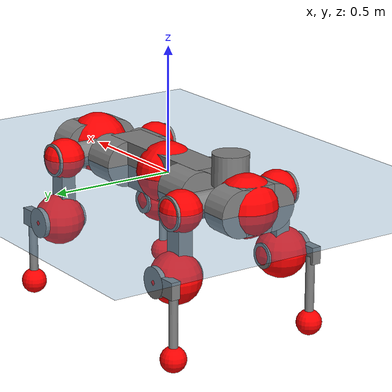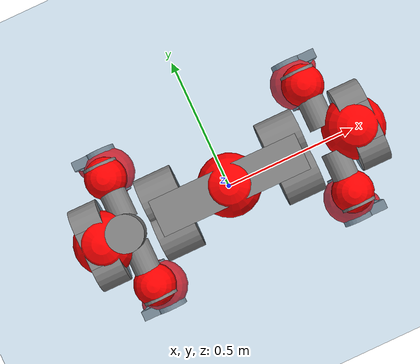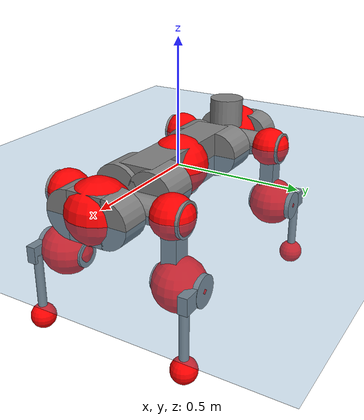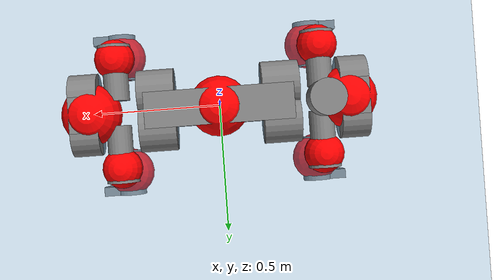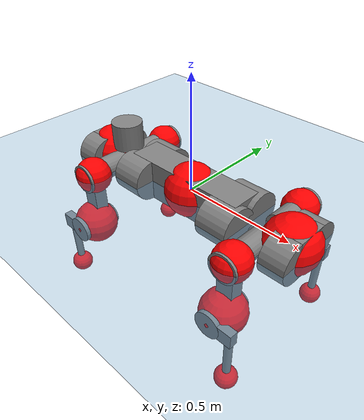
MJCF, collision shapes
<mujoco model="anymal_c">
  <compiler angle="radian" assetdir="assets" balanceinertia="true" inertiafromgeom="false"/>

  <option timestep="0.005" density="1.2" viscosity="2e-05"/>

  <size nkey="1"/>

  <visual>
    <quality shadowsize="8192"/>
    <map shadowclip="0.5"/>
  </visual>

  <default>
    <default class="/">
      <material specular="0" shininess="0.25"/>
      <geom contype="0" conaffinity="0" group="1" solref="-1000 -80"/>
      <site size="0.01 0.005 0.005" group="5"/>
      <general forcelimited="true" forcerange="-80 80" biastype="affine" gainprm="80" biasprm="0 -80 -2"/>
      <default class="anymal_c">
        <joint armature="0.01" damping="0.01" frictionloss="0.1"/>
        <default class="visual">
          <geom type="mesh" group="2"/>
          <default class="visual_zflip"/>
        </default>
        <default class="collision">
          <geom type="cylinder" group="3"/>
          <default class="foot">
            <geom size="0.03 0 0" type="sphere" condim="6" priority="1" friction="0.8 0.02 0.01" solimp="0.015 1 0.03"/>
          </default>
        </default>
      </default>
      <default class="reward_collision_sphere">
        <geom group="5" rgba="1 0 0 1"/>
      </default>
    </default>
  </default>

  <asset>
    <texture type="skybox" colorspace="auto" name="//unnamed_texture_0" builtin="gradient" rgb1="0.95 0.95 0.95" rgb2="0.95 0.95 0.95" width="100" height="600"/>
    <texture type="2d" colorspace="auto" name="texplane" builtin="checker" rgb1="0.345 0.575 0.748" rgb2="0.345 0.575 0.748" markrgb="1 1 1" width="512" height="512"/>
    <texture type="2d" colorspace="linear" name="base" file="base.png"/>
    <texture type="2d" colorspace="linear" name="top_shell" file="top_shell.png"/>
    <texture type="2d" colorspace="linear" name="bottom_shell" file="bottom_shell.png"/>
    <texture type="2d" colorspace="linear" name="remote" file="remote.png"/>
    <texture type="2d" colorspace="linear" name="hatch" file="hatch.png"/>
    <texture type="2d" colorspace="linear" name="handle" file="handle.png"/>
    <texture type="2d" colorspace="linear" name="face" file="face.png"/>
    <texture type="2d" colorspace="linear" name="battery" file="battery.png"/>
    <texture type="2d" colorspace="linear" name="lidar_cage" file="lidar_cage.png"/>
    <texture type="2d" colorspace="linear" name="depth_camera" file="depth_camera.png"/>
    <texture type="2d" colorspace="linear" name="wide_angle_camera" file="wide_angle_camera.png"/>
    <texture type="2d" colorspace="linear" name="lidar" file="lidar.png"/>
    <texture type="2d" colorspace="linear" name="drive" file="drive.png"/>
    <texture type="2d" colorspace="linear" name="hip_l" file="hip_l.png"/>
    <texture type="2d" colorspace="linear" name="shank_l" file="shank_l.png"/>
    <texture type="2d" colorspace="linear" name="foot" file="foot.png"/>
    <texture type="2d" colorspace="linear" name="thigh" file="thigh.png"/>
    <texture type="2d" colorspace="linear" name="shank_r" file="shank_r.png"/>
    <texture type="2d" colorspace="linear" name="hip_r" file="hip_r.png"/>
    <material name="MatPlane" class="/" texture="texplane" texuniform="true" texrepeat="2 2" specular="0.9" shininess="0.5"/>
    <material name="black_plastic" class="/" rgba="0.007 0.007 0.007 1"/>
    <material name="green" class="/" rgba="0.052 0.178 0.033 1"/>
    <material name="red" class="/" rgba="0.178 0.006 0.005 1"/>
    <material name="yellow" class="/" rgba="0.178 0.119 0.006 1"/>
    <material name="lwl" class="/" rgba="0.8 0.8 0.8 1"/>
    <material name="base" class="/" texture="base"/>
    <material name="top_shell" class="/" texture="top_shell"/>
    <material name="bottom_shell" class="/" texture="bottom_shell"/>
    <material name="hip_l" class="/" texture="hip_l"/>
    <material name="thigh" class="/" texture="thigh"/>
    <material name="shank_l" class="/" texture="shank_l"/>
    <material name="foot" class="/" texture="foot"/>
    <material name="hip_r" class="/" texture="hip_r"/>
    <material name="shank" class="/" texture="shank_r"/>
    <material name="hatch" class="/" texture="hatch"/>
    <material name="remote" class="/" texture="remote"/>
    <material name="handle" class="/" texture="handle"/>
    <material name="face" class="/" texture="face"/>
    <material name="depth_camera" class="/" texture="depth_camera"/>
    <material name="wide_angle_camera" class="/" texture="wide_angle_camera"/>
    <material name="battery" class="/" texture="battery"/>
    <material name="lidar_cage" class="/" texture="lidar_cage"/>
    <material name="lidar" class="/" texture="lidar"/>
    <material name="drive" class="/" texture="drive"/>
    <mesh name="base_0" class="/" file="base_0.obj"/>
    <mesh name="base_1" class="/" file="base_1.obj"/>
    <mesh name="base_2" class="/" file="base_2.obj"/>
    <mesh name="base_3" class="/" file="base_3.obj"/>
    <mesh name="base_4" class="/" file="base_4.obj"/>
    <mesh name="base_5" class="/" file="base_5.obj"/>
    <mesh name="top_shell" class="/" file="top_shell.obj"/>
    <mesh name="bottom_shell" class="/" file="bottom_shell.obj"/>
    <mesh name="remote" class="/" file="remote.obj"/>
    <mesh name="handle" class="/" file="handle.obj"/>
    <mesh name="face" class="/" file="face.obj"/>
    <mesh name="wide_angle_camera" class="/" file="wide_angle_camera.obj"/>
    <mesh name="depth_camera" class="/" file="depth_camera.obj"/>
    <mesh name="battery" class="/" file="battery.obj"/>
    <mesh name="lidar_cage" class="/" file="lidar_cage.obj"/>
    <mesh name="lidar" class="/" file="lidar.obj"/>
    <mesh name="drive" class="/" file="drive.obj"/>
    <mesh name="hip_l" class="/" file="hip_l.obj"/>
    <mesh name="thigh" class="/" file="thigh.obj"/>
    <mesh name="shank_l" class="/" file="shank_l.obj"/>
    <mesh name="foot" class="/" file="foot.obj"/>
    <mesh name="hip_r" class="/" file="hip_r.obj"/>
    <mesh name="hatch" class="/" file="hatch.obj"/>
    <mesh name="shank_r" class="/" file="shank_r.obj"/>
  </asset>

  <worldbody>
    <geom name="floor" class="/" size="100 100 0.125" type="plane" group="0" material="MatPlane"/>
    <light name="toplight_shadow" class="/" pos="0 0 5" dir="0.0990148 0.0990148 -0.990148" type="directional" ambient="0.04 0.04 0.04" diffuse="0.55 0.55 0.55" specular="0.12 0.12 0.12"/>
    <light name="toplight_fill" class="/" pos="0 0 5" dir="0.0990148 0.0990148 -0.990148" type="directional" castshadow="false" ambient="0.04 0.04 0.04" diffuse="0.3 0.3 0.3" specular="0.08 0.08 0.08"/>
    <body name="trunk" childclass="anymal_c" pos="0.00243949 0.00139478 0.0008201" quat="1 -6.25367e-05 2.67245e-05 1.76731e-05">
      <inertial pos="0.00254246 0.00121712 0.0416312" quat="0.508097 0.49193 0.501765 0.498071" mass="19.9497" diaginertia="1.23901 0.770822 0.108806"/>
      <joint name="//unnamed_joint_0" type="free" armature="0" damping="0" frictionloss="0"/>
      <geom name="//unnamed_geom_1" class="visual" material="green" mesh="base_0"/>
      <geom name="//unnamed_geom_2" class="visual" material="yellow" mesh="base_1"/>
      <geom name="//unnamed_geom_3" class="visual" material="red" mesh="base_2"/>
      <geom name="//unnamed_geom_4" class="visual" material="black_plastic" mesh="base_3"/>
      <geom name="//unnamed_geom_5" class="visual" material="lwl" mesh="base_4"/>
      <geom name="//unnamed_geom_6" class="visual" material="base" mesh="base_5"/>
      <geom name="trunk_1" class="collision" size="0.292844 0.0706865 0.0908826" type="box"/>
      <geom name="trunk_2" class="collision" size="0.0908826 0.073211" pos="0.24515 0.0721534 0" quat="0.707107 0 0.707107 0"/>
      <geom name="trunk_3" class="collision" size="0.0908826 0.073211" pos="-0.24515 0.0721534 0" quat="0.707107 0 0.707107 0"/>
      <geom name="trunk_4" class="collision" size="0.0908826 0.073211" pos="0.24515 -0.0721534 0" quat="0.707107 0 0.707107 0"/>
      <geom name="trunk_5" class="collision" size="0.0908826 0.073211" pos="-0.24515 -0.0721534 0" quat="0.707107 0 0.707107 0"/>
      <geom name="//unnamed_geom_12" class="visual" material="top_shell" mesh="top_shell"/>
      <geom name="//unnamed_geom_13" class="visual" material="bottom_shell" mesh="bottom_shell"/>
      <geom name="//unnamed_geom_14" class="visual" material="remote" mesh="remote"/>
      <geom name="//unnamed_geom_15" class="visual" material="handle" mesh="handle"/>
      <geom name="//unnamed_geom_16" class="visual" pos="0.467195 0 0" quat="1 0 0 0" material="face" mesh="face"/>
      <geom name="trunk_6" class="collision" size="0.0555394 0.0706865 0.0908826" pos="0.529187 0 0" type="box"/>
      <geom name="//unnamed_geom_18" class="collision" size="0.0908826 0.0555394" pos="0.529187 0.0721534 0" quat="0.707107 0 0.707107 0"/>
      <geom name="//unnamed_geom_19" class="collision" size="0.0908826 0.0555394" pos="0.529187 -0.0721534 0" quat="0.707107 0 0.707107 0"/>
      <geom name="//unnamed_geom_20" class="visual" pos="0.520328 0 -0.0235061" quat="0.965926 0 0.258819 0" material="depth_camera" mesh="depth_camera"/>
      <geom name="//unnamed_geom_21" class="visual" pos="0.578217 0 0.0130468" material="wide_angle_camera" mesh="wide_angle_camera"/>
      <geom name="//unnamed_geom_22" class="visual_zflip" pos="-0.467195 0 0" quat="0 0 0 1" material="face" mesh="face"/>
      <geom name="trunk_7" class="collision" size="0.0555394 0.0706865 0.0908826" pos="-0.529187 0 0" quat="0 0 0 1" type="box"/>
      <geom name="//unnamed_geom_24" class="collision" size="0.0908826 0.0555394" pos="-0.529187 -0.0721534 0" quat="0 -0.707107 0 0.707107"/>
      <geom name="//unnamed_geom_25" class="collision" size="0.0908826 0.0555394" pos="-0.529187 0.0721534 0" quat="0 -0.707107 0 0.707107"/>
      <geom name="//unnamed_geom_26" class="visual" pos="-0.520328 0 -0.0235061" quat="0 -0.258819 0 0.965926" material="depth_camera" mesh="depth_camera"/>
      <geom name="//unnamed_geom_27" class="visual_zflip" pos="-0.578217 0 0.0130468" quat="0 0 0 1" material="wide_angle_camera" mesh="wide_angle_camera"/>
      <geom name="//unnamed_geom_28" class="visual" material="battery" mesh="battery"/>
      <geom name="//unnamed_geom_29" class="visual" pos="0 0.0775371 0.0272605" quat="0.683013 -0.183013 0.183013 0.683013" material="depth_camera" mesh="depth_camera"/>
      <geom name="//unnamed_geom_30" class="visual" pos="0 -0.0775371 0.0272605" quat="0.683013 0.183013 0.183013 -0.683013" material="depth_camera" mesh="depth_camera"/>
      <geom name="//unnamed_geom_31" class="visual" pos="-0.410275 0 0.0640573" quat="1 0 0 0" material="lidar_cage" mesh="lidar_cage"/>
      <geom name="trunk_8" class="collision" size="0.0706865 0.0605884" pos="-0.410275 0 0.116349"/>
      <geom name="//unnamed_geom_33" class="visual" pos="-0.410275 -3.78591e-05 0.123931" quat="0.707107 0 0 -0.707107" material="lidar" mesh="lidar"/>
      <geom name="//unnamed_geom_34" class="visual" pos="0.338026 0.107143 2.74682e-09" quat="0.258819 0.965926 0 0" material="drive" mesh="drive"/>
      <geom name="//unnamed_geom_35" class="visual" pos="0.338026 -0.107143 -2.74682e-09" quat="0.258819 -0.965926 0 0" material="drive" mesh="drive"/>
      <geom name="//unnamed_geom_36" class="visual" pos="-0.338026 0.107143 -2.74682e-09" quat="0 0 0.965926 -0.258819" material="drive" mesh="drive"/>
      <geom name="//unnamed_geom_37" class="visual" pos="-0.338026 -0.107143 2.74682e-09" quat="0 0 -0.965926 -0.258819" material="drive" mesh="drive"/>
      <geom name="//unnamed_geom_38" class="visual" pos="0.130747 0 0.0636216" quat="1 0 0 0" material="hatch" mesh="hatch"/>
      <geom name="//unnamed_geom_39" class="reward_collision_sphere" size="0.121177"/>
      <geom name="//unnamed_geom_40" class="reward_collision_sphere" size="0.121177" pos="0.507208 0 0"/>
      <geom name="//unnamed_geom_41" class="reward_collision_sphere" size="0.121177" pos="-0.507208 0 0"/>
      <site name="imu" pos="0.281482 0.013706 0.0309955" size="0.0100981"/>
      <camera name="track" pos="0 -2.06153 0" quat="0.707107 0.707107 0 0" mode="trackcom"/>
      <camera name="ego_camera" pos="0.507208 0 -0.0348611" quat="-0.5 -0.5 0.5 0.5"/>
      <body name="LF_HIP" pos="0.337124 0.107214 -0.00299469" quat="0.258054 0.96613 0.00099365 5.59512e-06">
        <inertial pos="0.0617838 -0.0168777 -0.00769445" quat="-0.128354 0.710236 -0.133499 0.679168" mass="2.88466" diaginertia="0.0107471 0.00553349 0.00168051"/>
        <joint name="LF_HAA" pos="0 0 0" axis="0.999979 -0.00489894 0.00433871" range="-0.70115 0.488366" armature="0.00919494" damping="0.00701541" frictionloss="0.111663"/>
        <geom name="//unnamed_geom_42" class="visual" pos="0 0.000161583 -2.65399e-05" quat="0.258819 -0.965926 0 0" material="hip_l" mesh="hip_l"/>
        <geom name="//unnamed_geom_43" class="visual" pos="0.067515 -0.0804834 -0.0452893" quat="0.183013 -0.683013 0.683013 0.183013" material="drive" mesh="drive"/>
        <geom name="//unnamed_geom_44" class="collision" size="0.0504903 0.0706865" pos="0.067515 -0.0123277 -0.0060179" quat="-0.353553 -0.612372 0.612372 -0.353553"/>
        <body name="LF_THIGH" pos="0.065162 -0.0760398 -0.0385955" quat="0.183493 -0.682866 0.683215 0.182322">
          <inertial pos="0.0352263 0.000122615 -0.215672" quat="0.993753 -0.0113584 -0.0805824 0.0763655" mass="3.10672" diaginertia="0.0544184 0.0344259 0.00207669"/>
          <joint name="LF_HFE" pos="0 0 0" axis="0.999915 -0.000831257 -0.0130446" range="-3.11576 3.14113" armature="0.0115898" damping="0" frictionloss="0.0882179"/>
          <geom name="//unnamed_geom_45" class="visual" pos="0.00191728 3.02118e-06 0" quat="0.707107 0 0 -0.707107" material="thigh" mesh="thigh"/>
          <geom name="//unnamed_geom_46" class="collision" size="0.0656374 0.0403923" pos="0.0450851 0 0" quat="0.5 0.5 -0.5 -0.5"/>
          <geom name="//unnamed_geom_47" class="collision" size="0.0378678 0.0302942 0.1427" pos="0.0338138 0 -0.123159" quat="0.707107 0 0 -0.707107" type="box"/>
          <geom name="//unnamed_geom_48" class="visual" pos="0.113051 0 -0.248386" quat="1 0 0 0" material="drive" mesh="drive"/>
          <geom name="//unnamed_geom_49" class="collision" size="0.0504903 0.0706865" pos="0.034152 0 -0.248386" quat="0.707107 0 0.707107 0"/>
          <geom name="//unnamed_geom_50" class="reward_collision_sphere" size="0.0807845" pos="0.0281782 0 0"/>
          <body name="LF_SHANK" pos="0.112649 -0.00173651 -0.248524" quat="0.999999 0.000313606 0.000960311 0.000877339">
            <inertial pos="0.00824021 -0.0628038 -0.0701878" quat="0.993796 -0.109659 -0.00504776 -0.0178366" mass="0.646585" diaginertia="0.0184241 0.0111508 0.00056199"/>
            <joint name="LF_KFE" pos="0 0 0" axis="0.999994 -0.000393757 -0.00346057" range="-3.12987 3.15716" armature="0.0105151" damping="0" frictionloss="0.095878"/>
            <geom name="//unnamed_geom_51" class="visual" pos="0.000625183 0.00333351 0" quat="0.707107 0 0 -0.707107" material="shank_l" mesh="shank_l"/>
            <geom name="LF_kfe_act" class="collision" size="0.0605884 0.0201961" pos="0.0225426 0 0" quat="0.5 0.5 -0.5 -0.5"/>
            <geom name="//unnamed_geom_53" class="collision" size="0.0580629 0.034081 0.0191863" pos="0.0225426 -0.0592679 0" quat="0.5 0.5 -0.5 -0.5" type="box"/>
            <geom name="//unnamed_geom_54" class="visual" pos="0.0147089 -0.0895814 -0.29455" quat="0.382683 0 0 -0.92388" material="foot" mesh="foot"/>
            <geom name="LF_calf" class="collision" size="0.0176716 0.142637" pos="0.014709 -0.0906556 -0.147275" quat="0.707107 0 0 -0.707107"/>
            <geom name="LF_foot" class="foot" size="0.0334074" pos="0.014709 -0.0906556 -0.274941" quat="0.707107 0 0 -0.707107"/>
            <geom name="//unnamed_geom_57" class="reward_collision_sphere" size="0.100981" pos="-0.0563564 0 0"/>
            <geom name="//unnamed_geom_58" class="reward_collision_sphere" size="0.0504903" pos="0.014709 -0.0906556 -0.274941"/>
            <site name="LF_foot" class="foot" pos="0.014709 -0.0906556 -0.274941" quat="0.707107 0 0 -0.707107" size="0.0100981"/>
          </body>
        </body>
      </body>
      <body name="RF_HIP" pos="0.336596 -0.10605 -0.00176404" quat="0.259061 -0.965861 -0.000383547 0.000301158">
        <inertial pos="0.0657217 0.0167763 -0.00950041" quat="0.126279 0.674063 0.134809 0.715205" mass="2.8977" diaginertia="0.0110095 0.0056635 0.00169114"/>
        <joint name="RF_HAA" pos="0 0 0" axis="0.999904 -0.013599 -0.00247321" range="-0.535862 0.700562" armature="0.0100531" damping="0.00387797" frictionloss="0.0874445"/>
        <geom name="//unnamed_geom_59" class="visual" pos="0 -0.000161582 -2.65398e-05" quat="0.258819 0.965926 0 0" material="hip_r" mesh="hip_r"/>
        <geom name="//unnamed_geom_60" class="visual" pos="0.067515 0.0804834 -0.0452893" quat="0.183013 0.683013 0.683013 -0.183013" material="drive" mesh="drive"/>
        <geom name="//unnamed_geom_61" class="collision" size="0.0504903 0.0706865" pos="0.067515 0.0123277 -0.0060179" quat="-0.353553 0.612372 0.612372 0.353553"/>
        <body name="RF_THIGH" pos="0.0680617 0.0731457 -0.0348913" quat="0.182577 0.682705 0.683509 -0.182741">
          <inertial pos="0.0325881 0.00109027 -0.213658" quat="0.99259 -0.00561766 -0.0814538 0.0899881" mass="3.19053" diaginertia="0.0556943 0.034741 0.00212263"/>
          <joint name="RF_HFE" pos="0 0 0" axis="0.999951 -0.00745796 0.00652421" stiffness="0.00984193" range="-3.12039 3.18384" armature="0.00993613" damping="0" frictionloss="0.0976811"/>
          <geom name="//unnamed_geom_62" class="visual" pos="0.00191728 3.02118e-06 0" quat="0.707107 0 0 -0.707107" material="thigh" mesh="thigh"/>
          <geom name="//unnamed_geom_63" class="collision" size="0.0656374 0.0403923" pos="0.0450851 0 0" quat="0.5 0.5 0.5 0.5"/>
          <geom name="//unnamed_geom_64" class="collision" size="0.0378678 0.0302942 0.1427" pos="0.0338138 0 -0.123159" quat="0.707107 0 0 0.707107" type="box"/>
          <geom name="//unnamed_geom_65" class="visual" pos="0.113051 0 -0.248386" quat="1 0 0 0" material="drive" mesh="drive"/>
          <geom name="//unnamed_geom_66" class="collision" size="0.0504903 0.0706865" pos="0.034152 0 -0.248386" quat="0.707107 0 0.707107 0"/>
          <geom name="//unnamed_geom_67" class="reward_collision_sphere" size="0.0807845" pos="0.0281782 0 0"/>
          <body name="RF_SHANK" pos="0.11409 0.000557321 -0.244998" quat="1 -0.000141755 0.000555985 -0.000624163">
            <inertial pos="0.00729248 0.0603955 -0.0674767" quat="0.992816 0.116829 -0.00471843 0.0254173" mass="0.592617" diaginertia="0.0192361 0.0112307 0.000581499"/>
            <joint name="RF_KFE" pos="0 0 0" axis="0.999931 0.00504962 -0.0105663" stiffness="0.00718728" range="-3.18019 3.15253" armature="0.00957297" damping="0.0192195" frictionloss="0.113639"/>
            <geom name="//unnamed_geom_68" class="visual" pos="0.000625179 -0.0033335 0" quat="0.707107 0 0 0.707107" material="shank" mesh="shank_r"/>
            <geom name="RF_kfe_act" class="collision" size="0.0605884 0.0201961" pos="0.0225426 0 0" quat="0.5 0.5 0.5 0.5"/>
            <geom name="//unnamed_geom_70" class="collision" size="0.0580629 0.034081 0.0191863" pos="0.0225426 0.0592679 0" quat="0.5 0.5 0.5 0.5" type="box"/>
            <geom name="//unnamed_geom_71" class="visual" pos="0.0147092 0.0895814 -0.29455" quat="0.382683 0 0 0.92388" material="foot" mesh="foot"/>
            <geom name="RF_calf" class="collision" size="0.0176716 0.142637" pos="0.014709 0.0906556 -0.147275" quat="0.707107 0 0 0.707107"/>
            <geom name="RF_foot" class="foot" size="0.0299286" pos="0.014709 0.0906556 -0.274941" quat="0.707107 0 0 0.707107"/>
            <geom name="//unnamed_geom_74" class="reward_collision_sphere" size="0.100981" pos="-0.0563564 0 0"/>
            <geom name="//unnamed_geom_75" class="reward_collision_sphere" size="0.0504903" pos="0.014709 0.0906556 -0.274941"/>
            <site name="RF_foot" class="foot" pos="0.014709 0.0906556 -0.274941" quat="0.707107 0 0 0.707107" size="0.0100981"/>
          </body>
        </body>
      </body>
      <body name="LH_HIP" pos="-0.336756 0.104783 -0.000432437" quat="-1.92268e-05 -1.00672e-05 0.965928 -0.258809">
        <inertial pos="0.0660185 0.0144222 -0.00706747" quat="0.145595 0.683188 0.129003 0.703857" mass="2.77473" diaginertia="0.0105916 0.0056758 0.00159302"/>
        <joint name="LH_HAA" pos="0 0 0" axis="0.99993 0.0118177 0.00101279" range="-0.43784 0.752569" armature="0.0100599" damping="0.00988705" frictionloss="0.0961681"/>
        <geom name="//unnamed_geom_76" class="visual" pos="0 -0.000161582 -2.65398e-05" quat="-0.258819 -0.965926 0 0" material="hip_r" mesh="hip_r"/>
        <geom name="//unnamed_geom_77" class="visual" pos="0.067515 0.0804834 -0.0452893" quat="0.183013 0.683013 0.683013 -0.183013" material="drive" mesh="drive"/>
        <geom name="//unnamed_geom_78" class="collision" size="0.0504903 0.0706865" pos="0.067515 0.0123277 -0.0060179" quat="-0.353553 0.612372 0.612372 0.353553"/>
        <body name="LH_THIGH" pos="0.0690748 0.0766198 -0.035293" quat="0.183524 0.683425 0.682595 -0.182519">
          <inertial pos="0.034349 0.00182581 -0.214703" quat="0.991444 0.00396526 -0.088575 0.0958017" mass="3.25416" diaginertia="0.0549707 0.0357065 0.00213868"/>
          <joint name="LH_HFE" pos="0 0 0" axis="0.999921 -0.0122631 0.00273234" range="-3.08593 3.1938" armature="0.0111718" damping="0.0137295" frictionloss="0.114448"/>
          <geom name="//unnamed_geom_79" class="visual" pos="0.00191728 3.02118e-06 0" quat="0.707107 0 0 -0.707107" material="thigh" mesh="thigh"/>
          <geom name="//unnamed_geom_80" class="collision" size="0.0656374 0.0403923" pos="0.0450851 0 0" quat="0.5 0.5 -0.5 -0.5"/>
          <geom name="//unnamed_geom_81" class="collision" size="0.0378678 0.0302942 0.1427" pos="0.0338138 0 -0.123159" quat="0.707107 0 0 -0.707107" type="box"/>
          <geom name="//unnamed_geom_82" class="visual" pos="0.113051 0 -0.248386" quat="1 0 0 0" material="drive" mesh="drive"/>
          <geom name="//unnamed_geom_83" class="collision" size="0.0504903 0.0706865" pos="0.034152 0 -0.248386" quat="0.707107 0 0.707107 0"/>
          <geom name="//unnamed_geom_84" class="reward_collision_sphere" size="0.0807845" pos="0.0281782 0 0"/>
          <body name="LH_SHANK" pos="0.11048 0.00221507 -0.250176" quat="1 2.22399e-05 -0.00032941 0.000731124">
            <inertial pos="0.00513478 0.0631256 -0.0692269" quat="0.992465 0.116761 0.00189685 0.0371097" mass="0.591944" diaginertia="0.01857 0.0105565 0.000566842"/>
            <joint name="LH_KFE" pos="0 0 0" axis="0.999993 0.00369991 -0.00029798" range="-3.15179 3.08546" armature="0.0100039" damping="0.0115748" frictionloss="0.0868549"/>
            <geom name="//unnamed_geom_85" class="visual" pos="0.000625179 -0.0033335 0" quat="-0.707107 0 0 -0.707107" material="shank" mesh="shank_r"/>
            <geom name="LH_kfe_act" class="collision" size="0.0605884 0.0201961" pos="0.0225426 0 0" quat="0.5 0.5 -0.5 -0.5"/>
            <geom name="//unnamed_geom_87" class="collision" size="0.0580629 0.034081 0.0191863" pos="0.0225426 0.0592679 0" quat="0.5 0.5 -0.5 -0.5" type="box"/>
            <geom name="//unnamed_geom_88" class="visual" pos="0.0147092 0.0895814 -0.29455" quat="-0.382683 0 0 -0.92388" material="foot" mesh="foot"/>
            <geom name="LH_calf" class="collision" size="0.0176716 0.142637" pos="0.014709 0.0906556 -0.147275" quat="0.707107 0 0 -0.707107"/>
            <geom name="LH_foot" class="foot" size="0.0276898" pos="0.014709 0.0906556 -0.274941" quat="0.707107 0 0 -0.707107"/>
            <geom name="//unnamed_geom_91" class="reward_collision_sphere" size="0.100981" pos="-0.0563564 0 0"/>
            <geom name="//unnamed_geom_92" class="reward_collision_sphere" size="0.0504903" pos="0.014709 0.0906556 -0.274941"/>
            <site name="LH_foot" class="foot" pos="0.014709 0.0906556 -0.274941" quat="0.707107 0 0 -0.707107" size="0.0100981"/>
          </body>
        </body>
      </body>
      <body name="RH_HIP" pos="-0.339825 -0.106343 0.000560432" quat="0.000473073 -4.71507e-05 -0.965977 -0.258629">
        <inertial pos="0.0667046 -0.0135547 -0.00749342" quat="-0.129313 0.712443 -0.143265 0.67467" mass="2.89629" diaginertia="0.0110955 0.00597552 0.00172621"/>
        <joint name="RH_HAA" pos="0 0 0" axis="0.999959 -0.00896523 -0.00155379" range="-0.7306 0.511344" armature="0.00954039" damping="0.0218592" frictionloss="0.102359"/>
        <geom name="//unnamed_geom_93" class="visual" pos="0 0.000161583 -2.65399e-05" quat="-0.258819 0.965926 0 0" material="hip_l" mesh="hip_l"/>
        <geom name="//unnamed_geom_94" class="visual" pos="0.067515 -0.0804834 -0.0452893" quat="-0.183013 0.683013 -0.683013 -0.183013" material="drive" mesh="drive"/>
        <geom name="//unnamed_geom_95" class="collision" size="0.0504903 0.0706865" pos="0.067515 -0.0123277 -0.0060179" quat="0.353553 0.612372 -0.612372 0.353553"/>
        <body name="RH_THIGH" pos="0.0662225 -0.075661 -0.0343347" quat="-0.183433 0.683254 -0.682683 -0.18292">
          <inertial pos="0.0351738 0.000999701 -0.213231" quat="0.992761 -0.00699752 -0.0786083 0.0905422" mass="3.18601" diaginertia="0.0555965 0.0361911 0.00215243"/>
          <joint name="RH_HFE" pos="0 0 0" axis="0.999991 0.0042008 -5.54233e-05" range="-3.13104 3.17038" armature="0.0113126" damping="0" frictionloss="0.0899788"/>
          <geom name="//unnamed_geom_96" class="visual" pos="0.00191728 3.02118e-06 0" quat="0.707107 0 0 -0.707107" material="thigh" mesh="thigh"/>
          <geom name="//unnamed_geom_97" class="collision" size="0.0656374 0.0403923" pos="0.0450851 0 0" quat="0.5 0.5 0.5 0.5"/>
          <geom name="//unnamed_geom_98" class="collision" size="0.0378678 0.0302942 0.1427" pos="0.0338138 0 -0.123159" quat="0.707107 0 0 0.707107" type="box"/>
          <geom name="//unnamed_geom_99" class="visual" pos="0.113051 0 -0.248386" quat="1 0 0 0" material="drive" mesh="drive"/>
          <geom name="//unnamed_geom_100" class="collision" size="0.0504903 0.0706865" pos="0.034152 0 -0.248386" quat="0.707107 0 0.707107 0"/>
          <geom name="//unnamed_geom_101" class="reward_collision_sphere" size="0.0807845" pos="0.0281782 0 0"/>
          <body name="RH_SHANK" pos="0.112716 0.000759448 -0.247839" quat="1 4.80828e-05 -3.41809e-05 -6.43405e-05">
            <inertial pos="0.00373177 -0.0647602 -0.0682727" quat="0.992648 -0.118572 -0.00252846 -0.0241732" mass="0.633989" diaginertia="0.0180707 0.0112383 0.000568635"/>
            <joint name="RH_KFE" pos="0 0 0" axis="1 -0.000223527 0.000181467" range="-3.13709 3.17805" armature="0.00997085" damping="0.00821335" frictionloss="0.110795"/>
            <geom name="//unnamed_geom_102" class="visual" pos="0.000625183 0.00333351 0" quat="0.707107 0 0 -0.707107" material="shank_l" mesh="shank_l"/>
            <geom name="RH_kfe_act" class="collision" size="0.0605884 0.0201961" pos="0.0225426 0 0" quat="0.5 0.5 0.5 0.5"/>
            <geom name="//unnamed_geom_104" class="collision" size="0.0580629 0.034081 0.0191863" pos="0.0225426 -0.0592679 0" quat="0.5 0.5 0.5 0.5" type="box"/>
            <geom name="//unnamed_geom_105" class="visual" pos="0.0147089 -0.0895814 -0.29455" quat="0.382683 0 0 -0.92388" material="foot" mesh="foot"/>
            <geom name="RH_calf" class="collision" size="0.0176716 0.142637" pos="0.014709 -0.0906556 -0.147275" quat="0.707107 0 0 0.707107"/>
            <geom name="RH_foot" class="foot" size="0.0315105" pos="0.014709 -0.0906556 -0.274941" quat="0.707107 0 0 0.707107"/>
            <geom name="//unnamed_geom_108" class="reward_collision_sphere" size="0.100981" pos="-0.0563564 0 0"/>
            <geom name="//unnamed_geom_109" class="reward_collision_sphere" size="0.0504903" pos="0.014709 -0.0906556 -0.274941"/>
            <site name="RH_foot" class="foot" pos="0.014709 -0.0906556 -0.274941" quat="0.707107 0 0 0.707107" size="0.0100981"/>
          </body>
        </body>
      </body>
    </body>
  </worldbody>

  <contact>
    <pair class="/" geom1="floor" geom2="LF_foot" name="//unnamed_contact_0"/>
    <pair class="/" geom1="floor" geom2="RF_foot" name="//unnamed_contact_1"/>
    <pair class="/" geom1="floor" geom2="LH_foot" name="//unnamed_contact_2"/>
    <pair class="/" geom1="floor" geom2="RH_foot" name="//unnamed_contact_3"/>
  </contact>

  <actuator>
    <general name="LF_HAA" class="/" joint="LF_HAA" forcerange="-80.6361 80.6361" gainprm="81.1303" biasprm="0 -81.1303 -2.12215"/>
    <general name="LF_HFE" class="/" joint="LF_HFE" forcerange="-72.7549 72.7549" gainprm="81.1303" biasprm="0 -81.1303 -2.12215"/>
    <general name="LF_KFE" class="/" joint="LF_KFE" forcerange="-86.8205 86.8205" gainprm="81.1303" biasprm="0 -81.1303 -2.12215"/>
    <general name="RF_HAA" class="/" joint="RF_HAA" forcerange="-82.4372 82.4372" gainprm="81.1303" biasprm="0 -81.1303 -2.12215"/>
    <general name="RF_HFE" class="/" joint="RF_HFE" forcerange="-79.3162 79.3162" gainprm="81.1303" biasprm="0 -81.1303 -2.12215"/>
    <general name="RF_KFE" class="/" joint="RF_KFE" forcerange="-89.083 89.083" gainprm="81.1303" biasprm="0 -81.1303 -2.12215"/>
    <general name="LH_HAA" class="/" joint="LH_HAA" forcerange="-80.4561 80.4561" gainprm="81.1303" biasprm="0 -81.1303 -2.12215"/>
    <general name="LH_HFE" class="/" joint="LH_HFE" forcerange="-89.668 89.668" gainprm="81.1303" biasprm="0 -81.1303 -2.12215"/>
    <general name="LH_KFE" class="/" joint="LH_KFE" forcerange="-74.777 74.777" gainprm="81.1303" biasprm="0 -81.1303 -2.12215"/>
    <general name="RH_HAA" class="/" joint="RH_HAA" forcerange="-81.8552 81.8552" gainprm="81.1303" biasprm="0 -81.1303 -2.12215"/>
    <general name="RH_HFE" class="/" joint="RH_HFE" forcerange="-83.9949 83.9949" gainprm="81.1303" biasprm="0 -81.1303 -2.12215"/>
    <general name="RH_KFE" class="/" joint="RH_KFE" forcerange="-76.4173 76.4173" gainprm="81.1303" biasprm="0 -81.1303 -2.12215"/>
  </actuator>

  <sensor>
    <gyro site="imu" name="imu_angular_velocity"/>
    <velocimeter site="imu" name="imu_linear_velocity"/>
    <framelinvel objtype="site" objname="LF_foot" name="LF_foot_global_linear_velocity"/>
    <framelinvel objtype="site" objname="RF_foot" name="RF_foot_global_linear_velocity"/>
    <framelinvel objtype="site" objname="LH_foot" name="LH_foot_global_linear_velocity"/>
    <framelinvel objtype="site" objname="RH_foot" name="RH_foot_global_linear_velocity"/>
  </sensor>

  <keyframe>
    <key name="home" qpos="0 0 0.55 1 0 0 0 0 0.4 -0.8 0 -0.4 0.8 0 -0.4 0.8 0 0.4 -0.8"/>
  </keyframe>
</mujoco>
